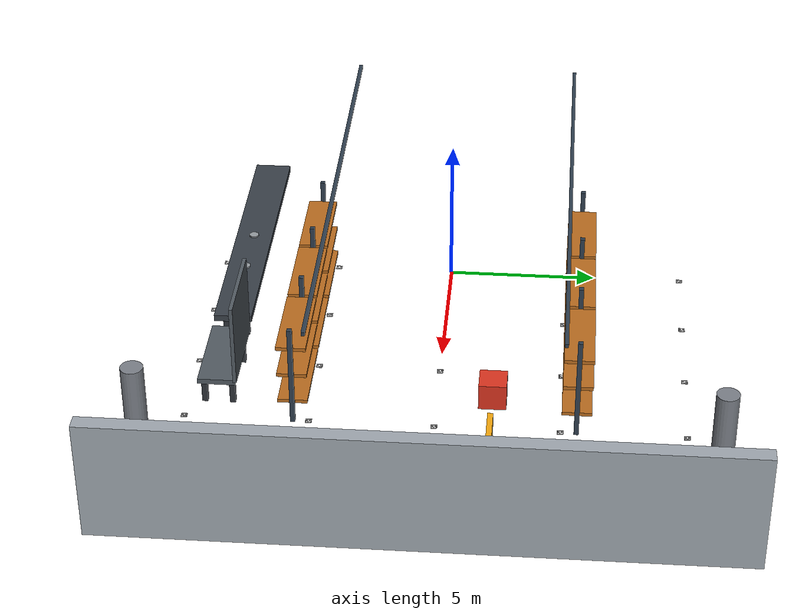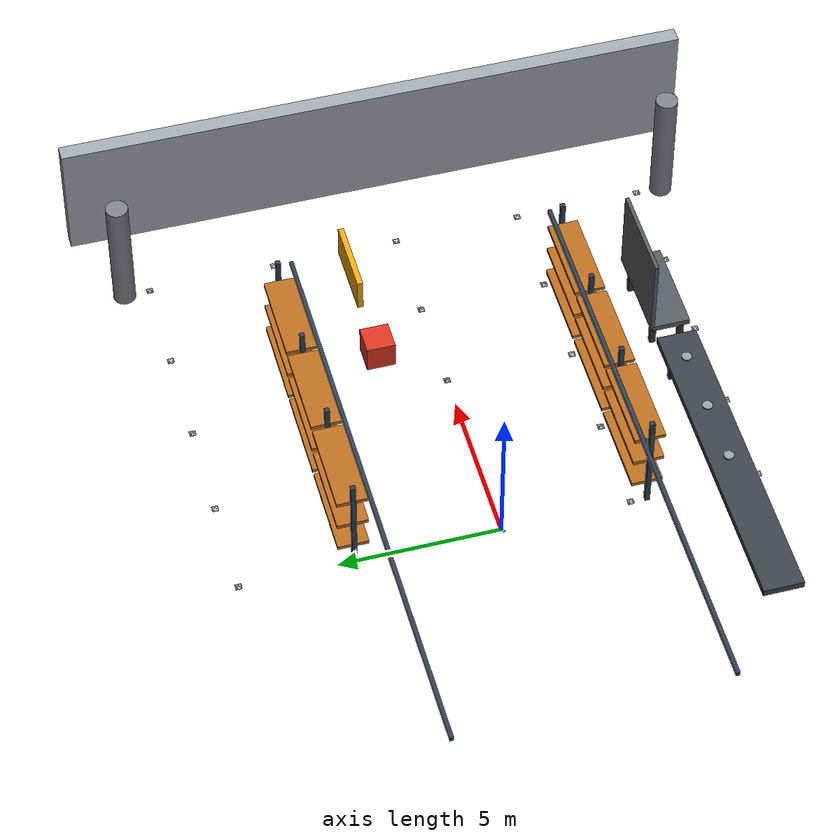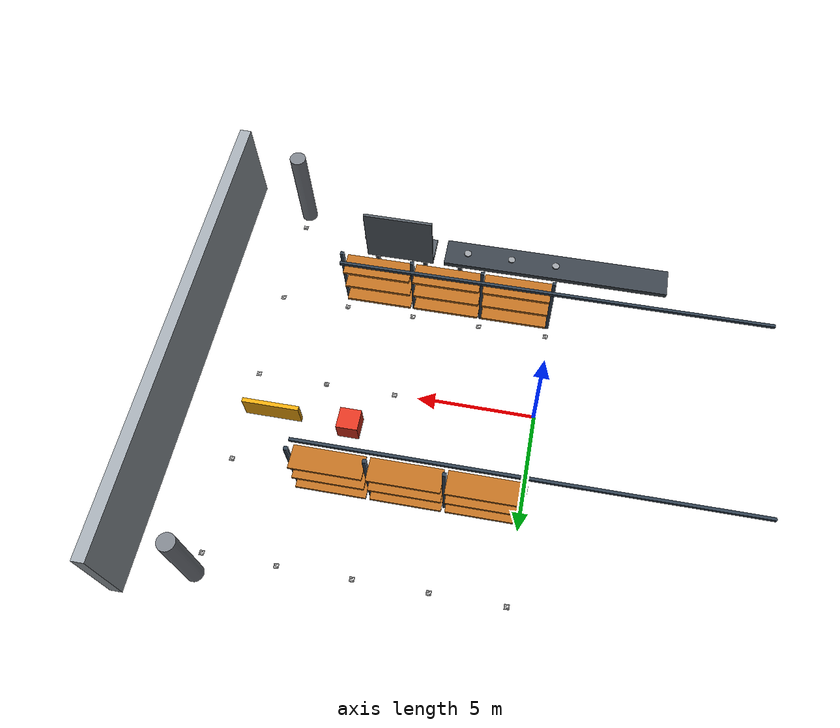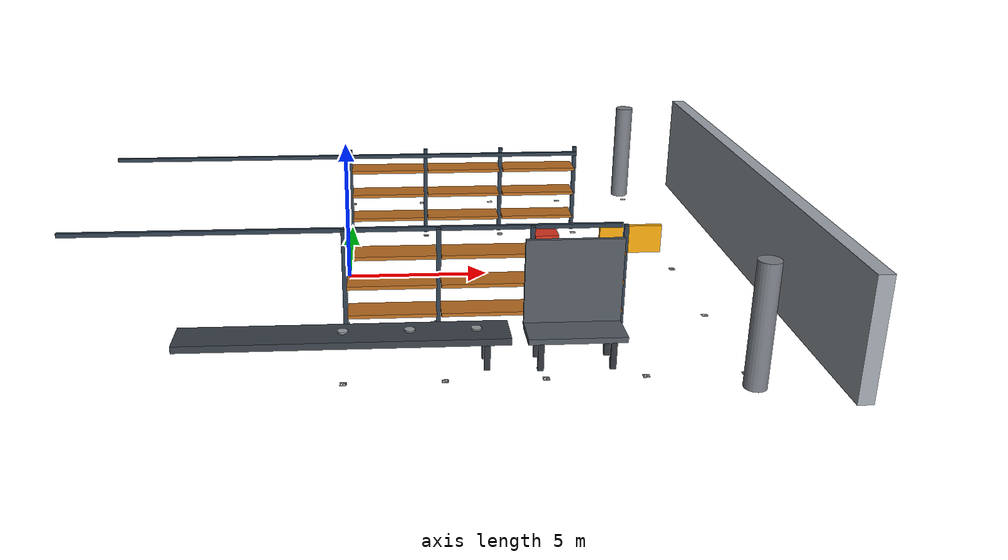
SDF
<sdf version="1.6">
 <world name="warehouse">
  <include><uri>model://sun</uri></include>
  <model name="east_wall">
   <static>true</static>
   <pose>14.75 0 2 0 0 0</pose>
   <link name="link">
    <visual name="visual">
     <geometry><box><size>0.5 20 4</size></box></geometry>
     <material>
      <ambient>0.62 0.65 0.68 1</ambient>
      <diffuse>0.62 0.65 0.68 1</diffuse>
      <specular>0.1 0.1 0.1 1</specular>
     </material>
    </visual>
    <collision name="collision">
     <geometry><box><size>0.5 20 4</size></box></geometry>
     <surface>
      <friction><ode><mu>0.8</mu><mu2>0.8</mu2></ode></friction>
      <contact><ode><kp>1000000</kp><kd>100</kd><max_vel>0.05</max_vel><min_depth>0</min_depth></ode></contact>
     </surface>
    </collision>
   </link>
  </model>
  <model name="pillar_ne">
   <static>true</static>
   <pose>12 8.8 2 0 0 0</pose>
   <link name="link">
    <visual name="visual">
     <geometry><cylinder><radius>0.35</radius><length>4</length></cylinder></geometry>
     <material>
      <ambient>0.48 0.50 0.53 1</ambient>
      <diffuse>0.48 0.50 0.53 1</diffuse>
      <specular>0.1 0.1 0.1 1</specular>
     </material>
    </visual>
    <collision name="collision">
     <geometry><cylinder><radius>0.35</radius><length>4</length></cylinder></geometry>
     <surface>
      <friction><ode><mu>0.8</mu><mu2>0.8</mu2></ode></friction>
      <contact><ode><kp>1000000</kp><kd>100</kd><max_vel>0.05</max_vel><min_depth>0</min_depth></ode></contact>
     </surface>
    </collision>
   </link>
  </model>
  <model name="pillar_se">
   <static>true</static>
   <pose>12 -8.8 2 0 0 0</pose>
   <link name="link">
    <visual name="visual">
     <geometry><cylinder><radius>0.35</radius><length>4</length></cylinder></geometry>
     <material>
      <ambient>0.48 0.50 0.53 1</ambient>
      <diffuse>0.48 0.50 0.53 1</diffuse>
      <specular>0.1 0.1 0.1 1</specular>
     </material>
    </visual>
    <collision name="collision">
     <geometry><cylinder><radius>0.35</radius><length>4</length></cylinder></geometry>
     <surface>
      <friction><ode><mu>0.8</mu><mu2>0.8</mu2></ode></friction>
      <contact><ode><kp>1000000</kp><kd>100</kd><max_vel>0.05</max_vel><min_depth>0</min_depth></ode></contact>
     </surface>
    </collision>
   </link>
  </model>
  <model name="rack_south_post_0">
   <static>true</static>
   <pose>0 -4.5 1.75 0 0 0</pose>
   <link name="link">
    <visual name="visual">
     <geometry><box><size>0.15 0.15 3.5</size></box></geometry>
     <material>
      <ambient>0.18 0.24 0.30 1</ambient>
      <diffuse>0.18 0.24 0.30 1</diffuse>
      <specular>0.1 0.1 0.1 1</specular>
     </material>
    </visual>
    <collision name="collision">
     <geometry><box><size>0.15 0.15 3.5</size></box></geometry>
     <surface>
      <friction><ode><mu>0.8</mu><mu2>0.8</mu2></ode></friction>
      <contact><ode><kp>1000000</kp><kd>100</kd><max_vel>0.05</max_vel><min_depth>0</min_depth></ode></contact>
     </surface>
    </collision>
   </link>
  </model>
  <model name="rack_south_post_3">
   <static>true</static>
   <pose>3 -4.5 1.75 0 0 0</pose>
   <link name="link">
    <visual name="visual">
     <geometry><box><size>0.15 0.15 3.5</size></box></geometry>
     <material>
      <ambient>0.18 0.24 0.30 1</ambient>
      <diffuse>0.18 0.24 0.30 1</diffuse>
      <specular>0.1 0.1 0.1 1</specular>
     </material>
    </visual>
    <collision name="collision">
     <geometry><box><size>0.15 0.15 3.5</size></box></geometry>
     <surface>
      <friction><ode><mu>0.8</mu><mu2>0.8</mu2></ode></friction>
      <contact><ode><kp>1000000</kp><kd>100</kd><max_vel>0.05</max_vel><min_depth>0</min_depth></ode></contact>
     </surface>
    </collision>
   </link>
  </model>
  <model name="rack_south_post_6">
   <static>true</static>
   <pose>6 -4.5 1.75 0 0 0</pose>
   <link name="link">
    <visual name="visual">
     <geometry><box><size>0.15 0.15 3.5</size></box></geometry>
     <material>
      <ambient>0.18 0.24 0.30 1</ambient>
      <diffuse>0.18 0.24 0.30 1</diffuse>
      <specular>0.1 0.1 0.1 1</specular>
     </material>
    </visual>
    <collision name="collision">
     <geometry><box><size>0.15 0.15 3.5</size></box></geometry>
     <surface>
      <friction><ode><mu>0.8</mu><mu2>0.8</mu2></ode></friction>
      <contact><ode><kp>1000000</kp><kd>100</kd><max_vel>0.05</max_vel><min_depth>0</min_depth></ode></contact>
     </surface>
    </collision>
   </link>
  </model>
  <model name="rack_south_post_9">
   <static>true</static>
   <pose>9 -4.5 1.75 0 0 0</pose>
   <link name="link">
    <visual name="visual">
     <geometry><box><size>0.15 0.15 3.5</size></box></geometry>
     <material>
      <ambient>0.18 0.24 0.30 1</ambient>
      <diffuse>0.18 0.24 0.30 1</diffuse>
      <specular>0.1 0.1 0.1 1</specular>
     </material>
    </visual>
    <collision name="collision">
     <geometry><box><size>0.15 0.15 3.5</size></box></geometry>
     <surface>
      <friction><ode><mu>0.8</mu><mu2>0.8</mu2></ode></friction>
      <contact><ode><kp>1000000</kp><kd>100</kd><max_vel>0.05</max_vel><min_depth>0</min_depth></ode></contact>
     </surface>
    </collision>
   </link>
  </model>
  <model name="rack_south_shelf_1.5_low">
   <static>true</static>
   <pose>1.5 -4.5 0.7 0 0 0</pose>
   <link name="link">
    <visual name="visual">
     <geometry><box><size>2.85 0.95 0.12</size></box></geometry>
     <material>
      <ambient>0.72 0.42 0.12 1</ambient>
      <diffuse>0.72 0.42 0.12 1</diffuse>
      <specular>0.1 0.1 0.1 1</specular>
     </material>
    </visual>
    <collision name="collision">
     <geometry><box><size>2.85 0.95 0.12</size></box></geometry>
     <surface>
      <friction><ode><mu>0.8</mu><mu2>0.8</mu2></ode></friction>
      <contact><ode><kp>1000000</kp><kd>100</kd><max_vel>0.05</max_vel><min_depth>0</min_depth></ode></contact>
     </surface>
    </collision>
   </link>
  </model>
  <model name="rack_south_shelf_1.5_mid">
   <static>true</static>
   <pose>1.5 -4.5 1.7 0 0 0</pose>
   <link name="link">
    <visual name="visual">
     <geometry><box><size>2.85 0.95 0.12</size></box></geometry>
     <material>
      <ambient>0.72 0.42 0.12 1</ambient>
      <diffuse>0.72 0.42 0.12 1</diffuse>
      <specular>0.1 0.1 0.1 1</specular>
     </material>
    </visual>
    <collision name="collision">
     <geometry><box><size>2.85 0.95 0.12</size></box></geometry>
     <surface>
      <friction><ode><mu>0.8</mu><mu2>0.8</mu2></ode></friction>
      <contact><ode><kp>1000000</kp><kd>100</kd><max_vel>0.05</max_vel><min_depth>0</min_depth></ode></contact>
     </surface>
    </collision>
   </link>
  </model>
  <model name="rack_south_shelf_1.5_high">
   <static>true</static>
   <pose>1.5 -4.5 2.7 0 0 0</pose>
   <link name="link">
    <visual name="visual">
     <geometry><box><size>2.85 0.95 0.12</size></box></geometry>
     <material>
      <ambient>0.72 0.42 0.12 1</ambient>
      <diffuse>0.72 0.42 0.12 1</diffuse>
      <specular>0.1 0.1 0.1 1</specular>
     </material>
    </visual>
    <collision name="collision">
     <geometry><box><size>2.85 0.95 0.12</size></box></geometry>
     <surface>
      <friction><ode><mu>0.8</mu><mu2>0.8</mu2></ode></friction>
      <contact><ode><kp>1000000</kp><kd>100</kd><max_vel>0.05</max_vel><min_depth>0</min_depth></ode></contact>
     </surface>
    </collision>
   </link>
  </model>
  <model name="rack_south_shelf_4.5_low">
   <static>true</static>
   <pose>4.5 -4.5 0.7 0 0 0</pose>
   <link name="link">
    <visual name="visual">
     <geometry><box><size>2.85 0.95 0.12</size></box></geometry>
     <material>
      <ambient>0.72 0.42 0.12 1</ambient>
      <diffuse>0.72 0.42 0.12 1</diffuse>
      <specular>0.1 0.1 0.1 1</specular>
     </material>
    </visual>
    <collision name="collision">
     <geometry><box><size>2.85 0.95 0.12</size></box></geometry>
     <surface>
      <friction><ode><mu>0.8</mu><mu2>0.8</mu2></ode></friction>
      <contact><ode><kp>1000000</kp><kd>100</kd><max_vel>0.05</max_vel><min_depth>0</min_depth></ode></contact>
     </surface>
    </collision>
   </link>
  </model>
  <model name="rack_south_shelf_4.5_mid">
   <static>true</static>
   <pose>4.5 -4.5 1.7 0 0 0</pose>
   <link name="link">
    <visual name="visual">
     <geometry><box><size>2.85 0.95 0.12</size></box></geometry>
     <material>
      <ambient>0.72 0.42 0.12 1</ambient>
      <diffuse>0.72 0.42 0.12 1</diffuse>
      <specular>0.1 0.1 0.1 1</specular>
     </material>
    </visual>
    <collision name="collision">
     <geometry><box><size>2.85 0.95 0.12</size></box></geometry>
     <surface>
      <friction><ode><mu>0.8</mu><mu2>0.8</mu2></ode></friction>
      <contact><ode><kp>1000000</kp><kd>100</kd><max_vel>0.05</max_vel><min_depth>0</min_depth></ode></contact>
     </surface>
    </collision>
   </link>
  </model>
  <model name="rack_south_shelf_4.5_high">
   <static>true</static>
   <pose>4.5 -4.5 2.7 0 0 0</pose>
   <link name="link">
    <visual name="visual">
     <geometry><box><size>2.85 0.95 0.12</size></box></geometry>
     <material>
      <ambient>0.72 0.42 0.12 1</ambient>
      <diffuse>0.72 0.42 0.12 1</diffuse>
      <specular>0.1 0.1 0.1 1</specular>
     </material>
    </visual>
    <collision name="collision">
     <geometry><box><size>2.85 0.95 0.12</size></box></geometry>
     <surface>
      <friction><ode><mu>0.8</mu><mu2>0.8</mu2></ode></friction>
      <contact><ode><kp>1000000</kp><kd>100</kd><max_vel>0.05</max_vel><min_depth>0</min_depth></ode></contact>
     </surface>
    </collision>
   </link>
  </model>
  <model name="rack_south_shelf_7.5_low">
   <static>true</static>
   <pose>7.5 -4.5 0.7 0 0 0</pose>
   <link name="link">
    <visual name="visual">
     <geometry><box><size>2.85 0.95 0.12</size></box></geometry>
     <material>
      <ambient>0.72 0.42 0.12 1</ambient>
      <diffuse>0.72 0.42 0.12 1</diffuse>
      <specular>0.1 0.1 0.1 1</specular>
     </material>
    </visual>
    <collision name="collision">
     <geometry><box><size>2.85 0.95 0.12</size></box></geometry>
     <surface>
      <friction><ode><mu>0.8</mu><mu2>0.8</mu2></ode></friction>
      <contact><ode><kp>1000000</kp><kd>100</kd><max_vel>0.05</max_vel><min_depth>0</min_depth></ode></contact>
     </surface>
    </collision>
   </link>
  </model>
  <model name="rack_south_shelf_7.5_mid">
   <static>true</static>
   <pose>7.5 -4.5 1.7 0 0 0</pose>
   <link name="link">
    <visual name="visual">
     <geometry><box><size>2.85 0.95 0.12</size></box></geometry>
     <material>
      <ambient>0.72 0.42 0.12 1</ambient>
      <diffuse>0.72 0.42 0.12 1</diffuse>
      <specular>0.1 0.1 0.1 1</specular>
     </material>
    </visual>
    <collision name="collision">
     <geometry><box><size>2.85 0.95 0.12</size></box></geometry>
     <surface>
      <friction><ode><mu>0.8</mu><mu2>0.8</mu2></ode></friction>
      <contact><ode><kp>1000000</kp><kd>100</kd><max_vel>0.05</max_vel><min_depth>0</min_depth></ode></contact>
     </surface>
    </collision>
   </link>
  </model>
  <model name="rack_south_shelf_7.5_high">
   <static>true</static>
   <pose>7.5 -4.5 2.7 0 0 0</pose>
   <link name="link">
    <visual name="visual">
     <geometry><box><size>2.85 0.95 0.12</size></box></geometry>
     <material>
      <ambient>0.72 0.42 0.12 1</ambient>
      <diffuse>0.72 0.42 0.12 1</diffuse>
      <specular>0.1 0.1 0.1 1</specular>
     </material>
    </visual>
    <collision name="collision">
     <geometry><box><size>2.85 0.95 0.12</size></box></geometry>
     <surface>
      <friction><ode><mu>0.8</mu><mu2>0.8</mu2></ode></friction>
      <contact><ode><kp>1000000</kp><kd>100</kd><max_vel>0.05</max_vel><min_depth>0</min_depth></ode></contact>
     </surface>
    </collision>
   </link>
  </model>
  <model name="rack_south_back_beam">
   <static>true</static>
   <pose>0 -4.08 3.35 0 0 0</pose>
   <link name="link">
    <visual name="visual">
     <geometry><box><size>18 0.12 0.14</size></box></geometry>
     <material>
      <ambient>0.18 0.24 0.30 1</ambient>
      <diffuse>0.18 0.24 0.30 1</diffuse>
      <specular>0.1 0.1 0.1 1</specular>
     </material>
    </visual>
    <collision name="collision">
     <geometry><box><size>18 0.12 0.14</size></box></geometry>
     <surface>
      <friction><ode><mu>0.8</mu><mu2>0.8</mu2></ode></friction>
      <contact><ode><kp>1000000</kp><kd>100</kd><max_vel>0.05</max_vel><min_depth>0</min_depth></ode></contact>
     </surface>
    </collision>
   </link>
  </model>
  <model name="rack_north_post_0">
   <static>true</static>
   <pose>0 4.5 1.75 0 0 0</pose>
   <link name="link">
    <visual name="visual">
     <geometry><box><size>0.15 0.15 3.5</size></box></geometry>
     <material>
      <ambient>0.18 0.24 0.30 1</ambient>
      <diffuse>0.18 0.24 0.30 1</diffuse>
      <specular>0.1 0.1 0.1 1</specular>
     </material>
    </visual>
    <collision name="collision">
     <geometry><box><size>0.15 0.15 3.5</size></box></geometry>
     <surface>
      <friction><ode><mu>0.8</mu><mu2>0.8</mu2></ode></friction>
      <contact><ode><kp>1000000</kp><kd>100</kd><max_vel>0.05</max_vel><min_depth>0</min_depth></ode></contact>
     </surface>
    </collision>
   </link>
  </model>
  <model name="rack_north_post_3">
   <static>true</static>
   <pose>3 4.5 1.75 0 0 0</pose>
   <link name="link">
    <visual name="visual">
     <geometry><box><size>0.15 0.15 3.5</size></box></geometry>
     <material>
      <ambient>0.18 0.24 0.30 1</ambient>
      <diffuse>0.18 0.24 0.30 1</diffuse>
      <specular>0.1 0.1 0.1 1</specular>
     </material>
    </visual>
    <collision name="collision">
     <geometry><box><size>0.15 0.15 3.5</size></box></geometry>
     <surface>
      <friction><ode><mu>0.8</mu><mu2>0.8</mu2></ode></friction>
      <contact><ode><kp>1000000</kp><kd>100</kd><max_vel>0.05</max_vel><min_depth>0</min_depth></ode></contact>
     </surface>
    </collision>
   </link>
  </model>
  <model name="rack_north_post_6">
   <static>true</static>
   <pose>6 4.5 1.75 0 0 0</pose>
   <link name="link">
    <visual name="visual">
     <geometry><box><size>0.15 0.15 3.5</size></box></geometry>
     <material>
      <ambient>0.18 0.24 0.30 1</ambient>
      <diffuse>0.18 0.24 0.30 1</diffuse>
      <specular>0.1 0.1 0.1 1</specular>
     </material>
    </visual>
    <collision name="collision">
     <geometry><box><size>0.15 0.15 3.5</size></box></geometry>
     <surface>
      <friction><ode><mu>0.8</mu><mu2>0.8</mu2></ode></friction>
      <contact><ode><kp>1000000</kp><kd>100</kd><max_vel>0.05</max_vel><min_depth>0</min_depth></ode></contact>
     </surface>
    </collision>
   </link>
  </model>
  <model name="rack_north_post_9">
   <static>true</static>
   <pose>9 4.5 1.75 0 0 0</pose>
   <link name="link">
    <visual name="visual">
     <geometry><box><size>0.15 0.15 3.5</size></box></geometry>
     <material>
      <ambient>0.18 0.24 0.30 1</ambient>
      <diffuse>0.18 0.24 0.30 1</diffuse>
      <specular>0.1 0.1 0.1 1</specular>
     </material>
    </visual>
    <collision name="collision">
     <geometry><box><size>0.15 0.15 3.5</size></box></geometry>
     <surface>
      <friction><ode><mu>0.8</mu><mu2>0.8</mu2></ode></friction>
      <contact><ode><kp>1000000</kp><kd>100</kd><max_vel>0.05</max_vel><min_depth>0</min_depth></ode></contact>
     </surface>
    </collision>
   </link>
  </model>
  <model name="rack_north_shelf_1.5_low">
   <static>true</static>
   <pose>1.5 4.5 0.7 0 0 0</pose>
   <link name="link">
    <visual name="visual">
     <geometry><box><size>2.85 0.95 0.12</size></box></geometry>
     <material>
      <ambient>0.72 0.42 0.12 1</ambient>
      <diffuse>0.72 0.42 0.12 1</diffuse>
      <specular>0.1 0.1 0.1 1</specular>
     </material>
    </visual>
    <collision name="collision">
     <geometry><box><size>2.85 0.95 0.12</size></box></geometry>
     <surface>
      <friction><ode><mu>0.8</mu><mu2>0.8</mu2></ode></friction>
      <contact><ode><kp>1000000</kp><kd>100</kd><max_vel>0.05</max_vel><min_depth>0</min_depth></ode></contact>
     </surface>
    </collision>
   </link>
  </model>
  <model name="rack_north_shelf_1.5_mid">
   <static>true</static>
   <pose>1.5 4.5 1.7 0 0 0</pose>
   <link name="link">
    <visual name="visual">
     <geometry><box><size>2.85 0.95 0.12</size></box></geometry>
     <material>
      <ambient>0.72 0.42 0.12 1</ambient>
      <diffuse>0.72 0.42 0.12 1</diffuse>
      <specular>0.1 0.1 0.1 1</specular>
     </material>
    </visual>
    <collision name="collision">
     <geometry><box><size>2.85 0.95 0.12</size></box></geometry>
     <surface>
      <friction><ode><mu>0.8</mu><mu2>0.8</mu2></ode></friction>
      <contact><ode><kp>1000000</kp><kd>100</kd><max_vel>0.05</max_vel><min_depth>0</min_depth></ode></contact>
     </surface>
    </collision>
   </link>
  </model>
  <model name="rack_north_shelf_1.5_high">
   <static>true</static>
   <pose>1.5 4.5 2.7 0 0 0</pose>
   <link name="link">
    <visual name="visual">
     <geometry><box><size>2.85 0.95 0.12</size></box></geometry>
     <material>
      <ambient>0.72 0.42 0.12 1</ambient>
      <diffuse>0.72 0.42 0.12 1</diffuse>
      <specular>0.1 0.1 0.1 1</specular>
     </material>
    </visual>
    <collision name="collision">
     <geometry><box><size>2.85 0.95 0.12</size></box></geometry>
     <surface>
      <friction><ode><mu>0.8</mu><mu2>0.8</mu2></ode></friction>
      <contact><ode><kp>1000000</kp><kd>100</kd><max_vel>0.05</max_vel><min_depth>0</min_depth></ode></contact>
     </surface>
    </collision>
   </link>
  </model>
  <model name="rack_north_shelf_4.5_low">
   <static>true</static>
   <pose>4.5 4.5 0.7 0 0 0</pose>
   <link name="link">
    <visual name="visual">
     <geometry><box><size>2.85 0.95 0.12</size></box></geometry>
     <material>
      <ambient>0.72 0.42 0.12 1</ambient>
      <diffuse>0.72 0.42 0.12 1</diffuse>
      <specular>0.1 0.1 0.1 1</specular>
     </material>
    </visual>
    <collision name="collision">
     <geometry><box><size>2.85 0.95 0.12</size></box></geometry>
     <surface>
      <friction><ode><mu>0.8</mu><mu2>0.8</mu2></ode></friction>
      <contact><ode><kp>1000000</kp><kd>100</kd><max_vel>0.05</max_vel><min_depth>0</min_depth></ode></contact>
     </surface>
    </collision>
   </link>
  </model>
  <model name="rack_north_shelf_4.5_mid">
   <static>true</static>
   <pose>4.5 4.5 1.7 0 0 0</pose>
   <link name="link">
    <visual name="visual">
     <geometry><box><size>2.85 0.95 0.12</size></box></geometry>
     <material>
      <ambient>0.72 0.42 0.12 1</ambient>
      <diffuse>0.72 0.42 0.12 1</diffuse>
      <specular>0.1 0.1 0.1 1</specular>
     </material>
    </visual>
    <collision name="collision">
     <geometry><box><size>2.85 0.95 0.12</size></box></geometry>
     <surface>
      <friction><ode><mu>0.8</mu><mu2>0.8</mu2></ode></friction>
      <contact><ode><kp>1000000</kp><kd>100</kd><max_vel>0.05</max_vel><min_depth>0</min_depth></ode></contact>
     </surface>
    </collision>
   </link>
  </model>
  <model name="rack_north_shelf_4.5_high">
   <static>true</static>
   <pose>4.5 4.5 2.7 0 0 0</pose>
   <link name="link">
    <visual name="visual">
     <geometry><box><size>2.85 0.95 0.12</size></box></geometry>
     <material>
      <ambient>0.72 0.42 0.12 1</ambient>
      <diffuse>0.72 0.42 0.12 1</diffuse>
      <specular>0.1 0.1 0.1 1</specular>
     </material>
    </visual>
    <collision name="collision">
     <geometry><box><size>2.85 0.95 0.12</size></box></geometry>
     <surface>
      <friction><ode><mu>0.8</mu><mu2>0.8</mu2></ode></friction>
      <contact><ode><kp>1000000</kp><kd>100</kd><max_vel>0.05</max_vel><min_depth>0</min_depth></ode></contact>
     </surface>
    </collision>
   </link>
  </model>
  <model name="rack_north_shelf_7.5_low">
   <static>true</static>
   <pose>7.5 4.5 0.7 0 0 0</pose>
   <link name="link">
    <visual name="visual">
     <geometry><box><size>2.85 0.95 0.12</size></box></geometry>
     <material>
      <ambient>0.72 0.42 0.12 1</ambient>
      <diffuse>0.72 0.42 0.12 1</diffuse>
      <specular>0.1 0.1 0.1 1</specular>
     </material>
    </visual>
    <collision name="collision">
     <geometry><box><size>2.85 0.95 0.12</size></box></geometry>
     <surface>
      <friction><ode><mu>0.8</mu><mu2>0.8</mu2></ode></friction>
      <contact><ode><kp>1000000</kp><kd>100</kd><max_vel>0.05</max_vel><min_depth>0</min_depth></ode></contact>
     </surface>
    </collision>
   </link>
  </model>
  <model name="rack_north_shelf_7.5_mid">
   <static>true</static>
   <pose>7.5 4.5 1.7 0 0 0</pose>
   <link name="link">
    <visual name="visual">
     <geometry><box><size>2.85 0.95 0.12</size></box></geometry>
     <material>
      <ambient>0.72 0.42 0.12 1</ambient>
      <diffuse>0.72 0.42 0.12 1</diffuse>
      <specular>0.1 0.1 0.1 1</specular>
     </material>
    </visual>
    <collision name="collision">
     <geometry><box><size>2.85 0.95 0.12</size></box></geometry>
     <surface>
      <friction><ode><mu>0.8</mu><mu2>0.8</mu2></ode></friction>
      <contact><ode><kp>1000000</kp><kd>100</kd><max_vel>0.05</max_vel><min_depth>0</min_depth></ode></contact>
     </surface>
    </collision>
   </link>
  </model>
  <model name="rack_north_shelf_7.5_high">
   <static>true</static>
   <pose>7.5 4.5 2.7 0 0 0</pose>
   <link name="link">
    <visual name="visual">
     <geometry><box><size>2.85 0.95 0.12</size></box></geometry>
     <material>
      <ambient>0.72 0.42 0.12 1</ambient>
      <diffuse>0.72 0.42 0.12 1</diffuse>
      <specular>0.1 0.1 0.1 1</specular>
     </material>
    </visual>
    <collision name="collision">
     <geometry><box><size>2.85 0.95 0.12</size></box></geometry>
     <surface>
      <friction><ode><mu>0.8</mu><mu2>0.8</mu2></ode></friction>
      <contact><ode><kp>1000000</kp><kd>100</kd><max_vel>0.05</max_vel><min_depth>0</min_depth></ode></contact>
     </surface>
    </collision>
   </link>
  </model>
  <model name="rack_north_back_beam">
   <static>true</static>
   <pose>0 4.08 3.35 0 0 0</pose>
   <link name="link">
    <visual name="visual">
     <geometry><box><size>18 0.12 0.14</size></box></geometry>
     <material>
      <ambient>0.18 0.24 0.30 1</ambient>
      <diffuse>0.18 0.24 0.30 1</diffuse>
      <specular>0.1 0.1 0.1 1</specular>
     </material>
    </visual>
    <collision name="collision">
     <geometry><box><size>18 0.12 0.14</size></box></geometry>
     <surface>
      <friction><ode><mu>0.8</mu><mu2>0.8</mu2></ode></friction>
      <contact><ode><kp>1000000</kp><kd>100</kd><max_vel>0.05</max_vel><min_depth>0</min_depth></ode></contact>
     </surface>
    </collision>
   </link>
  </model>
  <model name="conveyor_deck">
   <static>true</static>
   <pose>0 -7 1.05 0 0 0</pose>
   <link name="link">
    <visual name="visual">
     <geometry><box><size>10 1.25 0.22</size></box></geometry>
     <material>
      <ambient>0.22 0.25 0.28 1</ambient>
      <diffuse>0.22 0.25 0.28 1</diffuse>
      <specular>0.1 0.1 0.1 1</specular>
     </material>
    </visual>
    <collision name="collision">
     <geometry><box><size>10 1.25 0.22</size></box></geometry>
     <surface>
      <friction><ode><mu>0.7</mu><mu2>0.7</mu2></ode></friction>
      <contact><ode><kp>1000000</kp><kd>100</kd><max_vel>0.05</max_vel><min_depth>0</min_depth></ode></contact>
     </surface>
    </collision>
   </link>
  </model>
  <model name="conveyor_roller_0">
   <static>true</static>
   <pose>0 -7 1.22 0 0 0</pose>
   <link name="link">
    <visual name="visual">
     <geometry><cylinder><radius>0.16</radius><length>0.05</length></cylinder></geometry>
     <material>
      <ambient>0.58 0.60 0.62 1</ambient>
      <diffuse>0.58 0.60 0.62 1</diffuse>
      <specular>0.1 0.1 0.1 1</specular>
     </material>
    </visual>
    <collision name="collision">
     <geometry><cylinder><radius>0.16</radius><length>0.05</length></cylinder></geometry>
     <surface>
      <friction><ode><mu>0.7</mu><mu2>0.7</mu2></ode></friction>
      <contact><ode><kp>1000000</kp><kd>100</kd><max_vel>0.05</max_vel><min_depth>0</min_depth></ode></contact>
     </surface>
    </collision>
   </link>
  </model>
  <model name="conveyor_roller_2">
   <static>true</static>
   <pose>2 -7 1.22 0 0 0</pose>
   <link name="link">
    <visual name="visual">
     <geometry><cylinder><radius>0.16</radius><length>0.05</length></cylinder></geometry>
     <material>
      <ambient>0.58 0.60 0.62 1</ambient>
      <diffuse>0.58 0.60 0.62 1</diffuse>
      <specular>0.1 0.1 0.1 1</specular>
     </material>
    </visual>
    <collision name="collision">
     <geometry><cylinder><radius>0.16</radius><length>0.05</length></cylinder></geometry>
     <surface>
      <friction><ode><mu>0.7</mu><mu2>0.7</mu2></ode></friction>
      <contact><ode><kp>1000000</kp><kd>100</kd><max_vel>0.05</max_vel><min_depth>0</min_depth></ode></contact>
     </surface>
    </collision>
   </link>
  </model>
  <model name="conveyor_roller_4">
   <static>true</static>
   <pose>4 -7 1.22 0 0 0</pose>
   <link name="link">
    <visual name="visual">
     <geometry><cylinder><radius>0.16</radius><length>0.05</length></cylinder></geometry>
     <material>
      <ambient>0.58 0.60 0.62 1</ambient>
      <diffuse>0.58 0.60 0.62 1</diffuse>
      <specular>0.1 0.1 0.1 1</specular>
     </material>
    </visual>
    <collision name="collision">
     <geometry><cylinder><radius>0.16</radius><length>0.05</length></cylinder></geometry>
     <surface>
      <friction><ode><mu>0.7</mu><mu2>0.7</mu2></ode></friction>
      <contact><ode><kp>1000000</kp><kd>100</kd><max_vel>0.05</max_vel><min_depth>0</min_depth></ode></contact>
     </surface>
    </collision>
   </link>
  </model>
  <model name="conveyor_leg_4.3_-7.35">
   <static>true</static>
   <pose>4.3 -7.35 0.52 0 0 0</pose>
   <link name="link">
    <visual name="visual">
     <geometry><box><size>0.18 0.18 1</size></box></geometry>
     <material>
      <ambient>0.18 0.20 0.22 1</ambient>
      <diffuse>0.18 0.20 0.22 1</diffuse>
      <specular>0.1 0.1 0.1 1</specular>
     </material>
    </visual>
    <collision name="collision">
     <geometry><box><size>0.18 0.18 1</size></box></geometry>
     <surface>
      <friction><ode><mu>0.7</mu><mu2>0.7</mu2></ode></friction>
      <contact><ode><kp>1000000</kp><kd>100</kd><max_vel>0.05</max_vel><min_depth>0</min_depth></ode></contact>
     </surface>
    </collision>
   </link>
  </model>
  <model name="conveyor_leg_4.3_-6.65">
   <static>true</static>
   <pose>4.3 -6.65 0.52 0 0 0</pose>
   <link name="link">
    <visual name="visual">
     <geometry><box><size>0.18 0.18 1</size></box></geometry>
     <material>
      <ambient>0.18 0.20 0.22 1</ambient>
      <diffuse>0.18 0.20 0.22 1</diffuse>
      <specular>0.1 0.1 0.1 1</specular>
     </material>
    </visual>
    <collision name="collision">
     <geometry><box><size>0.18 0.18 1</size></box></geometry>
     <surface>
      <friction><ode><mu>0.7</mu><mu2>0.7</mu2></ode></friction>
      <contact><ode><kp>1000000</kp><kd>100</kd><max_vel>0.05</max_vel><min_depth>0</min_depth></ode></contact>
     </surface>
    </collision>
   </link>
  </model>
  <model name="packing_table">
   <static>true</static>
   <pose>7 -7 1 0 0 0</pose>
   <link name="link">
    <visual name="visual">
     <geometry><box><size>3 1.2 0.18</size></box></geometry>
     <material>
      <ambient>0.32 0.35 0.38 1</ambient>
      <diffuse>0.32 0.35 0.38 1</diffuse>
      <specular>0.1 0.1 0.1 1</specular>
     </material>
    </visual>
    <collision name="collision">
     <geometry><box><size>3 1.2 0.18</size></box></geometry>
     <surface>
      <friction><ode><mu>0.7</mu><mu2>0.7</mu2></ode></friction>
      <contact><ode><kp>1000000</kp><kd>100</kd><max_vel>0.05</max_vel><min_depth>0</min_depth></ode></contact>
     </surface>
    </collision>
   </link>
  </model>
  <model name="packing_leg_5.9_-7.45">
   <static>true</static>
   <pose>5.9 -7.45 0.5 0 0 0</pose>
   <link name="link">
    <visual name="visual">
     <geometry><box><size>0.18 0.18 1</size></box></geometry>
     <material>
      <ambient>0.18 0.20 0.22 1</ambient>
      <diffuse>0.18 0.20 0.22 1</diffuse>
      <specular>0.1 0.1 0.1 1</specular>
     </material>
    </visual>
    <collision name="collision">
     <geometry><box><size>0.18 0.18 1</size></box></geometry>
     <surface>
      <friction><ode><mu>0.7</mu><mu2>0.7</mu2></ode></friction>
      <contact><ode><kp>1000000</kp><kd>100</kd><max_vel>0.05</max_vel><min_depth>0</min_depth></ode></contact>
     </surface>
    </collision>
   </link>
  </model>
  <model name="packing_leg_8.1_-7.45">
   <static>true</static>
   <pose>8.1 -7.45 0.5 0 0 0</pose>
   <link name="link">
    <visual name="visual">
     <geometry><box><size>0.18 0.18 1</size></box></geometry>
     <material>
      <ambient>0.18 0.20 0.22 1</ambient>
      <diffuse>0.18 0.20 0.22 1</diffuse>
      <specular>0.1 0.1 0.1 1</specular>
     </material>
    </visual>
    <collision name="collision">
     <geometry><box><size>0.18 0.18 1</size></box></geometry>
     <surface>
      <friction><ode><mu>0.7</mu><mu2>0.7</mu2></ode></friction>
      <contact><ode><kp>1000000</kp><kd>100</kd><max_vel>0.05</max_vel><min_depth>0</min_depth></ode></contact>
     </surface>
    </collision>
   </link>
  </model>
  <model name="packing_leg_5.9_-6.55">
   <static>true</static>
   <pose>5.9 -6.55 0.5 0 0 0</pose>
   <link name="link">
    <visual name="visual">
     <geometry><box><size>0.18 0.18 1</size></box></geometry>
     <material>
      <ambient>0.18 0.20 0.22 1</ambient>
      <diffuse>0.18 0.20 0.22 1</diffuse>
      <specular>0.1 0.1 0.1 1</specular>
     </material>
    </visual>
    <collision name="collision">
     <geometry><box><size>0.18 0.18 1</size></box></geometry>
     <surface>
      <friction><ode><mu>0.7</mu><mu2>0.7</mu2></ode></friction>
      <contact><ode><kp>1000000</kp><kd>100</kd><max_vel>0.05</max_vel><min_depth>0</min_depth></ode></contact>
     </surface>
    </collision>
   </link>
  </model>
  <model name="packing_leg_8.1_-6.55">
   <static>true</static>
   <pose>8.1 -6.55 0.5 0 0 0</pose>
   <link name="link">
    <visual name="visual">
     <geometry><box><size>0.18 0.18 1</size></box></geometry>
     <material>
      <ambient>0.18 0.20 0.22 1</ambient>
      <diffuse>0.18 0.20 0.22 1</diffuse>
      <specular>0.1 0.1 0.1 1</specular>
     </material>
    </visual>
    <collision name="collision">
     <geometry><box><size>0.18 0.18 1</size></box></geometry>
     <surface>
      <friction><ode><mu>0.7</mu><mu2>0.7</mu2></ode></friction>
      <contact><ode><kp>1000000</kp><kd>100</kd><max_vel>0.05</max_vel><min_depth>0</min_depth></ode></contact>
     </surface>
    </collision>
   </link>
  </model>
  <model name="packing_backboard">
   <static>true</static>
   <pose>7 -6.4 2.4 0 0 0</pose>
   <link name="link">
    <visual name="visual">
     <geometry><box><size>3 0.12 2.8</size></box></geometry>
     <material>
      <ambient>0.32 0.35 0.38 1</ambient>
      <diffuse>0.32 0.35 0.38 1</diffuse>
      <specular>0.1 0.1 0.1 1</specular>
     </material>
    </visual>
    <collision name="collision">
     <geometry><box><size>3 0.12 2.8</size></box></geometry>
     <surface>
      <friction><ode><mu>0.7</mu><mu2>0.7</mu2></ode></friction>
      <contact><ode><kp>1000000</kp><kd>100</kd><max_vel>0.05</max_vel><min_depth>0</min_depth></ode></contact>
     </surface>
    </collision>
   </link>
  </model>
  <model name="safety_barrier">
   <static>true</static>
   <pose>10.8 1.8 0.55 0 0 0</pose>
   <link name="link">
    <visual name="visual">
     <geometry><box><size>2.4 0.18 1.1</size></box></geometry>
     <material>
      <ambient>0.95 0.65 0.05 1</ambient>
      <diffuse>0.95 0.65 0.05 1</diffuse>
      <specular>0.1 0.1 0.1 1</specular>
     </material>
    </visual>
    <collision name="collision">
     <geometry><box><size>2.4 0.18 1.1</size></box></geometry>
     <surface>
      <friction><ode><mu>0.7</mu><mu2>0.7</mu2></ode></friction>
      <contact><ode><kp>1000000</kp><kd>100</kd><max_vel>0.05</max_vel><min_depth>0</min_depth></ode></contact>
     </surface>
    </collision>
   </link>
  </model>
  <model name="mobile_obstacle">
   <static>true</static>
   <pose>7.5 1.8 0.45 0 0 0</pose>
   <link name="link">
    <visual name="visual">
     <geometry><box><size>0.9 0.9 0.9</size></box></geometry>
     <material>
      <ambient>0.85 0.20 0.12 1</ambient>
      <diffuse>0.85 0.20 0.12 1</diffuse>
      <specular>0.1 0.1 0.1 1</specular>
     </material>
    </visual>
    <collision name="collision">
     <geometry><box><size>0.9 0.9 0.9</size></box></geometry>
     <surface>
      <friction><ode><mu>0.7</mu><mu2>0.7</mu2></ode></friction>
      <contact><ode><kp>1000000</kp><kd>100</kd><max_vel>0.05</max_vel><min_depth>0</min_depth></ode></contact>
     </surface>
    </collision>
   </link>
  </model>
  <include><uri>model://datamatrix_marker</uri><name>datamatrix_105</name><pose>0 -8 0 0 0 0</pose></include>
  <include><uri>model://datamatrix_marker</uri><name>datamatrix_106</name><pose>3 -8 0 0 0 0</pose></include>
  <include><uri>model://datamatrix_marker</uri><name>datamatrix_107</name><pose>6 -8 0 0 0 0</pose></include>
  <include><uri>model://datamatrix_marker</uri><name>datamatrix_108</name><pose>9 -8 0 0 0 0</pose></include>
  <include><uri>model://datamatrix_marker</uri><name>datamatrix_109</name><pose>12 -8 0 0 0 0</pose></include>
  <include><uri>model://datamatrix_marker</uri><name>datamatrix_205</name><pose>0 -4 0 0 0 0</pose></include>
  <include><uri>model://datamatrix_marker</uri><name>datamatrix_206</name><pose>3 -4 0 0 0 0</pose></include>
  <include><uri>model://datamatrix_marker</uri><name>datamatrix_207</name><pose>6 -4 0 0 0 0</pose></include>
  <include><uri>model://datamatrix_marker</uri><name>datamatrix_208</name><pose>9 -4 0 0 0 0</pose></include>
  <include><uri>model://datamatrix_marker</uri><name>datamatrix_209</name><pose>12 -4 0 0 0 0</pose></include>
  <include><uri>model://datamatrix_marker</uri><name>datamatrix_305</name></include>
  <include><uri>model://datamatrix_marker</uri><name>datamatrix_306</name><pose>3 0 0 0 0 0</pose></include>
  <include><uri>model://datamatrix_marker</uri><name>datamatrix_307</name><pose>6 0 0 0 0 0</pose></include>
  <include><uri>model://datamatrix_marker</uri><name>datamatrix_308</name><pose>9 0 0 0 0 0</pose></include>
  <include><uri>model://datamatrix_marker</uri><name>datamatrix_309</name><pose>12 0 0 0 0 0</pose></include>
  <include><uri>model://datamatrix_marker</uri><name>datamatrix_405</name><pose>0 4 0 0 0 0</pose></include>
  <include><uri>model://datamatrix_marker</uri><name>datamatrix_406</name><pose>3 4 0 0 0 0</pose></include>
  <include><uri>model://datamatrix_marker</uri><name>datamatrix_407</name><pose>6 4 0 0 0 0</pose></include>
  <include><uri>model://datamatrix_marker</uri><name>datamatrix_408</name><pose>9 4 0 0 0 0</pose></include>
  <include><uri>model://datamatrix_marker</uri><name>datamatrix_409</name><pose>12 4 0 0 0 0</pose></include>
  <include><uri>model://datamatrix_marker</uri><name>datamatrix_505</name><pose>0 8 0 0 0 0</pose></include>
  <include><uri>model://datamatrix_marker</uri><name>datamatrix_506</name><pose>3 8 0 0 0 0</pose></include>
  <include><uri>model://datamatrix_marker</uri><name>datamatrix_507</name><pose>6 8 0 0 0 0</pose></include>
  <include><uri>model://datamatrix_marker</uri><name>datamatrix_508</name><pose>9 8 0 0 0 0</pose></include>
  <include><uri>model://datamatrix_marker</uri><name>datamatrix_509</name><pose>12 8 0 0 0 0</pose></include>
 </world>
</sdf>
